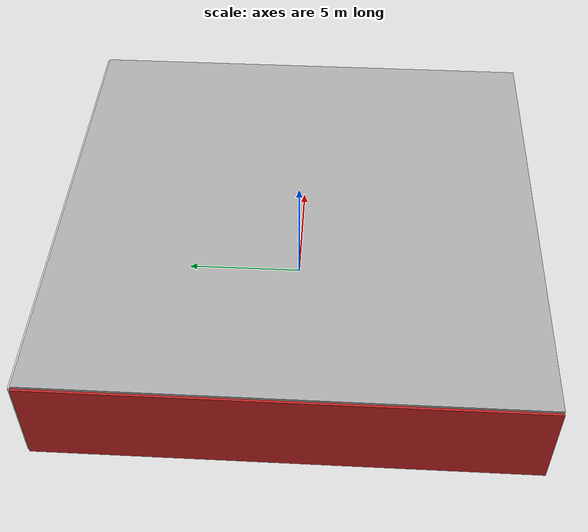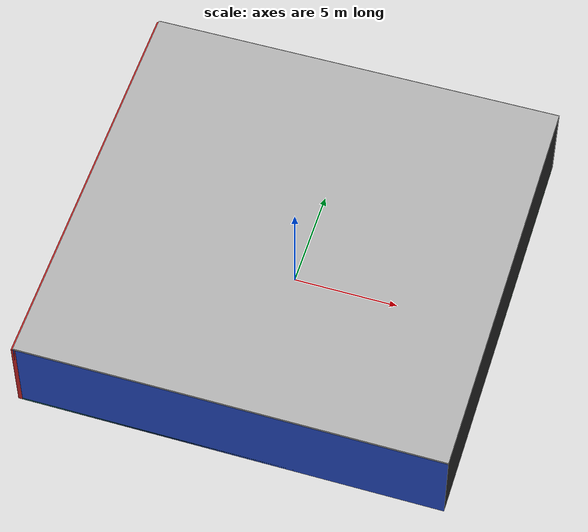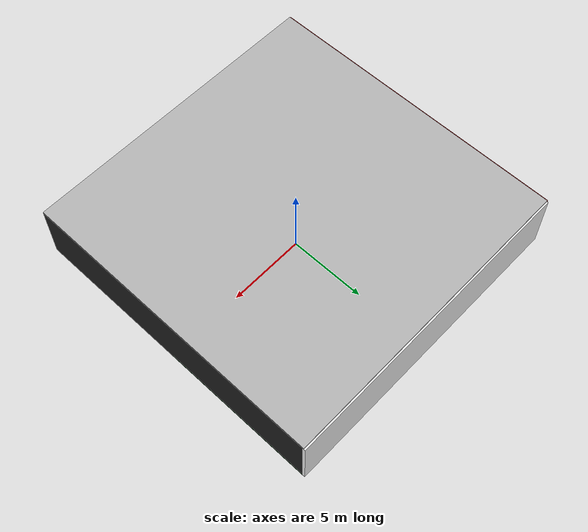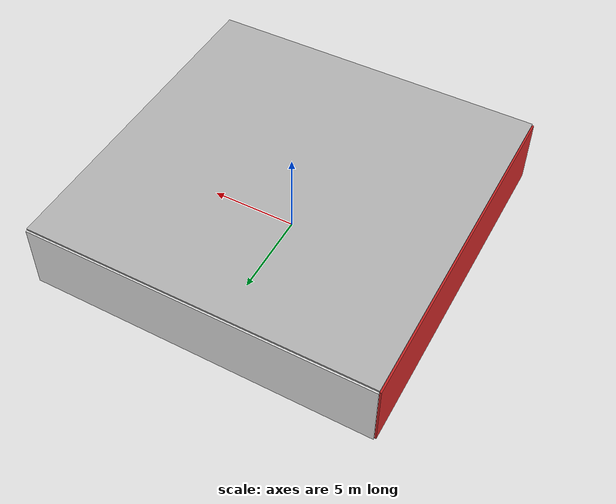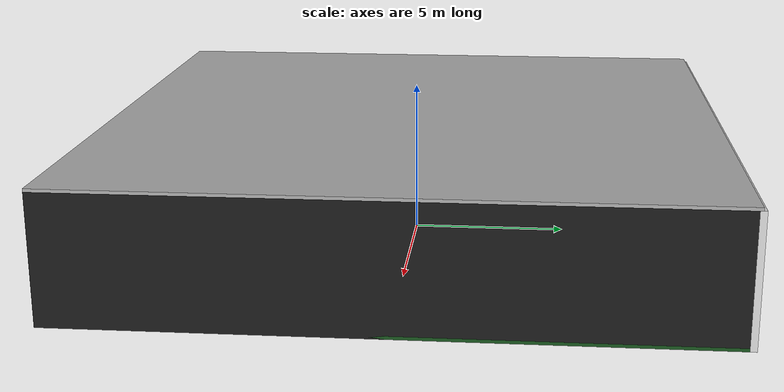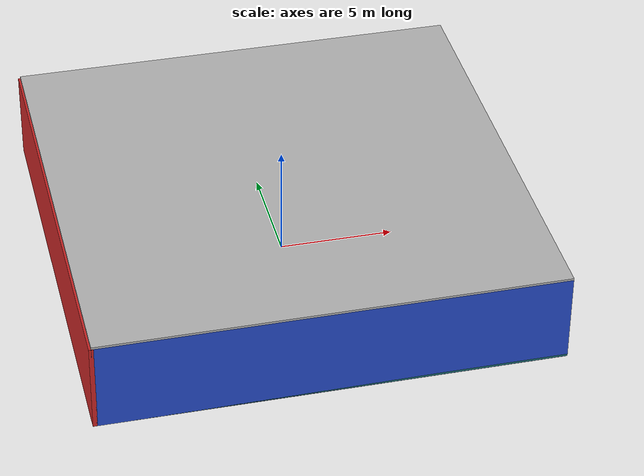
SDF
<sdf version="1.4">
 <world name="default">
  <physics type="ode">
   <max_step_size>0.001</max_step_size>
   <real_time_factor>1</real_time_factor>
   <real_time_update_rate>1000</real_time_update_rate>
   <gravity>0 0 -9.8</gravity>
  </physics>
  <scene><ambient>0.4 0.4 0.4 1</ambient><background>0.7 0.7 0.7 1</background><shadows>1</shadows></scene>
  <model name="Surrounding">
   <static>1</static>
   <link name="Ceiling">
    <collision name="Ceiling_Collision"><geometry><box><size>20 20 0.1</size></box></geometry></collision>
    <visual name="Ceiling_Visual">
     <geometry><box><size>20 20 0.1</size></box></geometry>
     <material>
      <script><uri>file://media/materials/scripts/gazebo.material</uri><name>Gazebo/PioneerBody</name></script>
     </material>
    </visual>
    <pose>0 0 4.05 0 0 0</pose>
   </link>
   <link name="Wall_South">
    <collision name="Wall_South_Collision">
     <geometry><box><size>20 0 4</size></box></geometry>
     <pose>0 0 2 0 -0 0</pose>
    </collision>
    <visual name="Wall_South_Visual">
     <pose>0 0 2 0 -0 0</pose>
     <geometry><box><size>20 0 4</size></box></geometry>
     <material>
      <script><uri>file://media/materials/scripts/gazebo.material</uri><name>Gazebo/BlueGlow</name></script>
     </material>
    </visual>
    <velocity_decay><linear>0</linear><angular>0</angular></velocity_decay>
    <pose>0 -10 0 0 -0 0</pose>
   </link>
   <link name="Wall_East">
    <collision name="Wall_21_Collision">
     <geometry><box><size>20 0 4</size></box></geometry>
     <pose>0 0 2 0 -0 0</pose>
    </collision>
    <visual name="Wall_21_Visual">
     <pose>0 0 2 0 -0 0</pose>
     <geometry><box><size>20 0 4</size></box></geometry>
     <material>
      <script><uri>file://media/materials/scripts/gazebo.material</uri><name>Gazebo/Black</name></script>
     </material>
    </visual>
    <velocity_decay><linear>0</linear><angular>0</angular></velocity_decay>
    <pose>10 0 0 0 -0 1.5708</pose>
   </link>
   <link name="Wall_North">
    <collision name="Wall_22_Collision">
     <geometry><box><size>20 0.2 4</size></box></geometry>
     <pose>0 0 2 0 -0 0</pose>
    </collision>
    <visual name="Wall_22_Visual">
     <pose>0 0 2 0 -0 0</pose>
     <geometry><box><size>20 0.2 4</size></box></geometry>
     <material>
      <script><uri>file://media/materials/scripts/gazebo.material</uri><name>Gazebo/WhiteGlow</name></script>
     </material>
    </visual>
    <velocity_decay><linear>0</linear><angular>0</angular></velocity_decay>
    <pose>0 10 0 0 -0 0</pose>
   </link>
   <link name="Wall_West">
    <collision name="Wall_23_Collision">
     <geometry><box><size>20 0.2 4</size></box></geometry>
     <pose>0 0 2 0 -0 0</pose>
    </collision>
    <visual name="Wall_23_Visual">
     <pose>0 0 2 0 -0 0</pose>
     <geometry><box><size>20 0.2 4</size></box></geometry>
     <material>
      <script><uri>file://media/materials/scripts/gazebo.material</uri><name>Gazebo/RedGlow</name></script>
     </material>
    </visual>
    <velocity_decay><linear>0</linear><angular>0</angular></velocity_decay>
    <pose>-10 0 0 0 0 -1.5708</pose>
   </link>
   <link name="Ground_link">
    <collision name="collision">
     <pose>0 0 .05 0 -0 0</pose>
     <geometry><box><size>20 20 0.1</size></box></geometry>
    </collision>
    <visual name="visual">
     <pose>0 0 .05 0 -0 0</pose>
     <geometry><box><size>20 20 0.1</size></box></geometry>
     <material>
      <script><uri>file://media/materials/scripts/gazebo.material</uri><name>Gazebo/GreenTransparent</name></script>
     </material>
    </visual>
   </link>
   <static>1</static>
  </model>
  <spherical_coordinates>
   <surface_model>EARTH_WGS84</surface_model>
   <latitude_deg>0</latitude_deg>
   <longitude_deg>0</longitude_deg>
   <elevation>0</elevation>
   <heading_deg>0</heading_deg>
  </spherical_coordinates>
  <light name="lightball_0" type="diffuse">
   <diffuse>0.8 0.8 0.8 1</diffuse>
   <specular>0.2 0.2 0.2 1</specular>
   <attenuation>
    <range>100</range>
    <constant>0.7</constant>
    <linear>0.01</linear>
    <quadratic>0.001</quadratic>
   </attenuation>
   <direction>-0.5 0.1 -0.9</direction>
   <pose>-4.68584872339 -4.50088857678 1.73264135369 0 0 0</pose>
  </light>
  <light name="lightball_1" type="diffuse">
   <diffuse>0.8 0.8 0.8 1</diffuse>
   <specular>0.2 0.2 0.2 1</specular>
   <attenuation>
    <range>100</range>
    <constant>0.7</constant>
    <linear>0.01</linear>
    <quadratic>0.001</quadratic>
   </attenuation>
   <direction>-0.5 0.1 -0.9</direction>
   <pose>3.69026820189 9.64765241765 2.22722132269 0 0 0</pose>
  </light>
  <light name="lightball_2" type="diffuse">
   <diffuse>0.8 0.8 0.8 1</diffuse>
   <specular>0.2 0.2 0.2 1</specular>
   <attenuation>
    <range>100</range>
    <constant>0.7</constant>
    <linear>0.01</linear>
    <quadratic>0.001</quadratic>
   </attenuation>
   <direction>-0.5 0.1 -0.9</direction>
   <pose>-5.43085351725 -9.34544000069 2.45455011479 0 0 0</pose>
  </light>
  <light name="lightball_3" type="diffuse">
   <diffuse>0.8 0.8 0.8 1</diffuse>
   <specular>0.2 0.2 0.2 1</specular>
   <attenuation>
    <range>100</range>
    <constant>0.7</constant>
    <linear>0.01</linear>
    <quadratic>0.001</quadratic>
   </attenuation>
   <direction>-0.5 0.1 -0.9</direction>
   <pose>-3.41916346679 7.30406194041 3.78796573821 0 0 0</pose>
  </light>
  <light name="lightball_4" type="diffuse">
   <diffuse>0.8 0.8 0.8 1</diffuse>
   <specular>0.2 0.2 0.2 1</specular>
   <attenuation>
    <range>100</range>
    <constant>0.7</constant>
    <linear>0.01</linear>
    <quadratic>0.001</quadratic>
   </attenuation>
   <direction>-0.5 0.1 -0.9</direction>
   <pose>0.513835887442 1.8040107515 2.92812512013 0 0 0</pose>
  </light>
  <light name="lightball_5" type="diffuse">
   <diffuse>0.8 0.8 0.8 1</diffuse>
   <specular>0.2 0.2 0.2 1</specular>
   <attenuation>
    <range>100</range>
    <constant>0.7</constant>
    <linear>0.01</linear>
    <quadratic>0.001</quadratic>
   </attenuation>
   <direction>-0.5 0.1 -0.9</direction>
   <pose>-4.41919769868 -4.14613322283 1.36747070387 0 0 0</pose>
  </light>
  <light name="lightball_6" type="diffuse">
   <diffuse>0.8 0.8 0.8 1</diffuse>
   <specular>0.2 0.2 0.2 1</specular>
   <attenuation>
    <range>100</range>
    <constant>0.7</constant>
    <linear>0.01</linear>
    <quadratic>0.001</quadratic>
   </attenuation>
   <direction>-0.5 0.1 -0.9</direction>
   <pose>-2.38477514633 -4.68219089171 2.79840548368 0 0 0</pose>
  </light>
  <include>
   <uri>model://construction_cone</uri>
   <pose>-7.54521548568 -1.81931916674 0 0 0 0.256186638182</pose>
  </include>
  <include><uri>model://cabinet</uri><pose>-7.58000480543 4.36924627289 0 0 0 3.10063523389</pose></include>
  <include>
   <uri>model://robocup_3Dsim_goal</uri>
   <pose>-6.32962998926 6.37931626187 0 0 0 1.53674955241</pose>
  </include>
  <include><uri>model://cabinet</uri><pose>-4.10254704915 -1.09342581973 0 0 0 0.812444788417</pose></include>
  <include><uri>model://table</uri><pose>-2.21391017904 1.40185053704 0 0 0 2.94234071046</pose></include>
  <include>
   <uri>model://robocup_3Dsim_goal</uri>
   <pose>1.80678653717 -8.2368804496 0 0 0 2.79115162107</pose>
  </include>
  <include>
   <uri>model://construction_cone</uri>
   <pose>1.39389364611 -0.680147814251 0 0 0 1.5791520357</pose>
  </include>
  <include>
   <uri>model://textured_shapes</uri>
   <pose>5.02376473578 6.74852612385 0 0 0 2.96970535172</pose>
  </include>
 </world>
</sdf>

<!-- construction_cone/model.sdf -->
<sdf version="1.5">
  <model name="Construction Cone">
    <link name="link">
      <collision name="collision">
        <geometry>
          <mesh>
            <scale>10 10 10</scale>
            <uri>file://isr-testbed/construction_cone/meshes/construction_cone.dae</uri>
          </mesh>
        </geometry>
      </collision>
      <visual name="visual">
        <geometry>
          <mesh>
            <scale>10 10 10</scale>
            <uri>file://isr-testbed/construction_cone/meshes/construction_cone.dae</uri>
          </mesh>
        </geometry>
      </visual>
    </link>
  </model>
</sdf>

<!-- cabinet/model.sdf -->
<sdf version="1.5">
  <model name="cabinet">
    <static>true</static>
    <link name="cabinet_bottom_plate">
      <inertial>
        <pose>0 0 -1 0 0 0</pose>
        <inertia>
          <ixx>2.050000</ixx>
          <ixy>0</ixy>
          <ixz>0</ixz>
          <iyy>2.050000</iyy>
          <iyz>0</iyz>
          <izz>2.050000</izz>
        </inertia>
        <mass>25.000000</mass>
      </inertial>
      <collision name="cabinet_bottom_plate_geom">
        <pose>0 0 0.010000 0 0 0</pose>
        <geometry>
          <box>
            <size>0.450000 0.450000 0.020000</size>
          </box>
        </geometry>
      </collision>
      <visual name="cabinet_bottom_plate_geom_visual">
        <pose>0 0 0.010000 0 0 0</pose>
        <geometry>
          <box>
            <size>0.450000 0.450000 0.020000</size>
          </box>
        </geometry>
        <material>
          <script>
            <uri>model://media/materials/scripts/gazebo.material</uri>
            <name>Gazebo/Wood</name>
          </script>
        </material>
      </visual>
      <collision name="cabinet_bottom_plate_geom_cabinet_back_plate">
        <pose>0.235000 0 0.510000 0 0 0</pose>
        <geometry>
          <box>
            <size>0.020000 0.450000 1.020000</size>
          </box>
        </geometry>
      </collision>
      <visual name="cabinet_bottom_plate_geom_cabinet_back_plate_visual">
        <pose>0.235000 0 0.510000 0 0 0</pose>
        <geometry>
          <box>
            <size>0.020000 0.450000 1.020000</size>
          </box>
        </geometry>
        <material>
          <script>
            <uri>model://media/materials/scripts/gazebo.material</uri>
            <name>Gazebo/Wood</name>
          </script>
        </material>
      </visual>
      <collision name="cabinet_bottom_plate_geom_cabinet_left_plate">
        <pose>0 0.235000 0.510000 0 0 0</pose>
        <geometry>
          <box>
            <size>0.450000 0.020000 1.020000</size>
          </box>
        </geometry>
      </collision>
      <visual name="cabinet_bottom_plate_geom_cabinet_left_plate_visual">
        <pose>0 0.235000 0.510000 0 0 0</pose>
        <geometry>
          <box>
            <size>0.450000 0.020000 1.020000</size>
          </box>
        </geometry>
        <material>
          <script>
            <uri>model://media/materials/scripts/gazebo.material</uri>
            <name>Gazebo/Wood</name>
          </script>
        </material>
      </visual>
      <collision name="cabinet_bottom_plate_geom_cabinet_middle_plate">
        <pose>0 0 0.510000 0 0 0</pose>
        <geometry>
          <box>
            <size>0.450000 0.450000 0.020000</size>
          </box>
        </geometry>
      </collision>
      <visual name="cabinet_bottom_plate_geom_cabinet_middle_plate_visual">
        <pose>0 0 0.510000 0 0 0</pose>
        <geometry>
          <box>
            <size>0.450000 0.450000 0.020000</size>
          </box>
        </geometry>
        <material>
          <script>
            <uri>model://media/materials/scripts/gazebo.material</uri>
            <name>Gazebo/Wood</name>
          </script>
        </material>
      </visual>
      <collision name="cabinet_bottom_plate_geom_cabinet_right_plate">
        <pose>0 -0.235000 0.510000 0 0 0</pose>
        <geometry>
          <box>
            <size>0.450000 0.020000 1.020000</size>
          </box>
        </geometry>
      </collision>
      <visual name="cabinet_bottom_plate_geom_cabinet_right_plate_visual">
        <pose>0 -0.235000 0.510000 0 0 0</pose>
        <geometry>
          <box>
            <size>0.450000 0.020000 1.020000</size>
          </box>
        </geometry>
        <material>
          <script>
            <uri>model://media/materials/scripts/gazebo.material</uri>
            <name>Gazebo/Wood</name>
          </script>
        </material>
      </visual>
      <collision name="cabinet_bottom_plate_geom_cabinet_top_plate">
        <pose>0 0 1.010000 0 0 0</pose>
        <geometry>
          <box>
            <size>0.450000 0.450000 0.020000</size>
          </box>
        </geometry>
      </collision>
      <visual name="cabinet_bottom_plate_geom_cabinet_top_plate_visual">
        <pose>0 0 1.010000 0 0 0</pose>
        <geometry>
          <box>
            <size>0.450000 0.450000 0.020000</size>
          </box>
        </geometry>
        <material>
          <script>
            <uri>model://media/materials/scripts/gazebo.material</uri>
            <name>Gazebo/Wood</name>
          </script>
        </material>
      </visual>
    </link>
  </model>
</sdf>

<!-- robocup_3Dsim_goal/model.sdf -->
<sdf version="1.5">
  <model name="robocup_3d_goal">
    <static>true</static>
    <link name="left_post">
      <pose>0 1.05 0.45 0 0 0</pose>
      <collision name="collision">
        <geometry>
          <cylinder>
            <radius>0.05</radius>
            <length>0.9</length>
          </cylinder>
        </geometry>
      </collision>
      <visual name="visual">
        <geometry>
          <cylinder>
            <radius>0.05</radius>
            <length>0.9</length>
          </cylinder>
        </geometry>
        <material>
          <script>
            <uri>file://media/materials/scripts/gazebo.material</uri>
            <name>Gazebo/ZincYellow</name>
          </script>
        </material>
      </visual>
    </link>
    <link name="left_support_horiz_lower">
      <pose>0.30 1.05 0.01 0 0 0</pose>
      <collision name="collision">
        <geometry>
          <box>
            <size>0.50 0.02 0.02</size>
          </box>
        </geometry>
      </collision>
      <visual name="visual">
        <geometry>
          <box>
            <size>0.50 0.02 0.02</size>
          </box>
        </geometry>
        <material>
          <script>
            <uri>file://media/materials/scripts/gazebo.material</uri>
            <name>Gazebo/White</name>
          </script>
        </material>
      </visual>
    </link>
    <link name="left_support_horiz_upper">
      <pose>0.30 1.05 0.79 0 0 0</pose>
      <collision name="collision">
        <geometry>
          <box>
            <size>0.50 0.02 0.02</size>
          </box>
        </geometry>
      </collision>
      <visual name="visual">
        <geometry>
          <box>
            <size>0.50 0.02 0.02</size>
          </box>
        </geometry>
        <material>
          <script>
            <uri>file://media/materials/scripts/gazebo.material</uri>
            <name>Gazebo/White</name>
          </script>
        </material>
      </visual>
    </link>
    <link name="left_support_vertical">
      <pose>0.56 1.05 0.4 0 1.5708 0</pose>
      <collision name="collision">
        <geometry>
          <box>
            <size>0.80 0.02 0.02</size>
          </box>
        </geometry>
      </collision>
      <visual name="visual">
        <geometry>
          <box>
            <size>0.80 0.02 0.02</size>
          </box>
        </geometry>
        <material>
          <script>
            <uri>file://media/materials/scripts/gazebo.material</uri>
            <name>Gazebo/White</name>
          </script>
        </material>
      </visual>
    </link>
    <link name="right_support_horiz_lower">
      <pose>0.30 -1.05 0.01 0 0 0</pose>
      <collision name="collision">
        <geometry>
          <box>
            <size>0.50 0.02 0.02</size>
          </box>
        </geometry>
      </collision>
      <visual name="visual">
        <geometry>
          <box>
            <size>0.50 0.02 0.02</size>
          </box>
        </geometry>
        <material>
          <script>
            <uri>file://media/materials/scripts/gazebo.material</uri>
            <name>Gazebo/White</name>
          </script>
        </material>
      </visual>
    </link>
    <link name="right_support_horiz_upper">
      <pose>0.30 -1.05 0.79 0 0 0</pose>
      <collision name="collision">
        <geometry>
          <box>
            <size>0.50 0.02 0.02</size>
          </box>
        </geometry>
      </collision>
      <visual name="visual">
        <geometry>
          <box>
            <size>0.50 0.02 0.02</size>
          </box>
        </geometry>
        <material>
          <script>
            <uri>file://media/materials/scripts/gazebo.material</uri>
            <name>Gazebo/White</name>
          </script>
        </material>
      </visual>
    </link>
    <link name="right_support_vertical">
      <pose>0.56 -1.05 0.4 0 1.5708 0</pose>
      <collision name="collision">
        <geometry>
          <box>
            <size>0.80 0.02 0.02</size>
          </box>
        </geometry>
      </collision>
      <visual name="visual">
        <geometry>
          <box>
            <size>0.80 0.02 0.02</size>
          </box>
        </geometry>
        <material>
          <script>
            <uri>file://media/materials/scripts/gazebo.material</uri>
            <name>Gazebo/White</name>
          </script>
        </material>
      </visual>
    </link>
    <link name="center_support_horiz_lower">
      <pose>0.56 0 0.01 0 1.5708 0</pose>
      <collision name="collision">
        <geometry>
          <box>
            <size>0.02 2.08 0.02</size>
          </box>
        </geometry>
      </collision>
      <visual name="visual">
        <geometry>
          <box>
            <size>0.02 2.08 0.02</size>
          </box>
        </geometry>
        <material>
          <script>
            <uri>file://media/materials/scripts/gazebo.material</uri>
            <name>Gazebo/White</name>
          </script>
        </material>
      </visual>
    </link>
    <link name="center_support_horiz_upper">
      <pose>0.56 0 0.79 0 1.5708 0</pose>
      <collision name="collision">
        <geometry>
          <box>
            <size>0.02 2.08 0.02</size>
          </box>
        </geometry>
      </collision>
      <visual name="visual">
        <geometry>
          <box>
            <size>0.02 2.08 0.02</size>
          </box>
        </geometry>
        <material>
          <script>
            <uri>file://media/materials/scripts/gazebo.material</uri>
            <name>Gazebo/White</name>
          </script>
        </material>
      </visual>
    </link>
    <link name="right_post">
      <pose>0 -1.05 0.45 0 0 0</pose>
      <collision name="collision">
        <geometry>
          <cylinder>
            <radius>0.05</radius>
            <length>0.9</length>
          </cylinder>
        </geometry>
      </collision>
      <visual name="visual">
        <geometry>
          <cylinder>
            <radius>0.05</radius>
            <length>0.9</length>
          </cylinder>
        </geometry>
        <material>
          <script>
            <uri>file://media/materials/scripts/gazebo.material</uri>
            <name>Gazebo/ZincYellow</name>
          </script>
        </material>
      </visual>
    </link>
    <link name="crossbar">
      <pose>0 0 0.85 1.57 1.57 0</pose>
      <collision name="collision">
        <geometry>
          <cylinder>
            <radius>0.05</radius>
            <length>2.0</length>
          </cylinder>
        </geometry>
      </collision>
      <visual name="visual">
        <geometry>
          <cylinder>
            <radius>0.05</radius>
            <length>2.0</length>
          </cylinder>
        </geometry>
        <material>
          <script>
            <uri>file://media/materials/scripts/gazebo.material</uri>
            <name>Gazebo/ZincYellow</name>
          </script>
        </material>
      </visual>
    </link>
    <link name="center_net">
      <pose>0.56 0 0.40 0 0 0</pose>
      <collision name="collision">
        <geometry>
          <box>
            <size>0.01 2.1 0.80</size>
          </box>
        </geometry>
      </collision>
      <visual name="visual">
        <geometry>
          <box>
            <size>0.01 2.1 0.80</size>
          </box>
        </geometry>
        <material>
          <script>
            <uri>model://../model_source/models/robocup09_spl_field/materials/scripts/</uri>
            <uri>model://../model_source/models/robocup09_spl_field/materials/textures/</uri>
            <name>RoboCup/Net</name>
          </script>
        </material>
      </visual>
    </link>
    <link name="left_net">
      <pose>0.30 1.05 0.40 0 0 0</pose>
      <collision name="collision">
        <geometry>
          <box>
            <size>0.50 0.01 0.76</size>
          </box>
        </geometry>
      </collision>
      <visual name="visual">
        <geometry>
          <box>
            <size>0.50 0.01 0.76</size>
          </box>
        </geometry>
        <material>
          <script>
            <uri>model://../model_source/models/robocup09_spl_field/materials/scripts/</uri>
            <uri>model://../model_source/models/robocup09_spl_field/materials/textures/</uri>
            <name>RoboCup/Net</name>
          </script>
        </material>
      </visual>
    </link>
    <link name="right_net">
      <pose>0.30 -1.05 0.40 0 0 0</pose>
      <collision name="collision">
        <geometry>
          <box>
            <size>0.50 0.01 0.76</size>
          </box>
        </geometry>
      </collision>
      <visual name="visual">
        <geometry>
          <box>
            <size>0.50 0.01 0.76</size>
          </box>
        </geometry>
        <material>
          <script>
            <uri>model://../model_source/models/robocup09_spl_field/materials/scripts/</uri>
            <uri>model://../model_source/models/robocup09_spl_field/materials/textures/</uri>
            <name>RoboCup/Net</name>
          </script>
        </material>
      </visual>
    </link>
  </model>
</sdf>

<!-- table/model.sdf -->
<sdf version="1.5">
  <model name="table">
    <static>true</static>
    <link name="link">
      <collision name="surface">
        <pose>0 0 1.0 0 0 0</pose>
        <geometry>
          <box>
            <size>1.5 0.8 0.03</size>
          </box>
        </geometry>
        <surface>
          <friction>
            <ode>
              <mu>0.6</mu>
              <mu2>0.6</mu2>
            </ode>
          </friction>
        </surface>
      </collision>
      <visual name="visual1">
        <pose>0 0 1.0 0 0 0</pose>
        <geometry>
          <box>
            <size>1.5 0.8 0.03</size>
          </box>
        </geometry>
        <material>
          <script>
            <uri>model://media/materials/scripts/gazebo.material</uri>
            <name>Gazebo/Wood</name>
          </script>
        </material>
      </visual>
      <collision name="front_left_leg">
        <pose>0.68 0.38 0.5 0 0 0</pose>
        <geometry>
          <cylinder>
            <radius>0.02</radius>
            <length>1.0</length>
          </cylinder>
        </geometry>
      </collision>
      <visual name="front_left_leg">
        <pose>0.68 0.38 0.5 0 0 0</pose>
        <geometry>
          <cylinder>
            <radius>0.02</radius>
            <length>1.0</length>
          </cylinder>
        </geometry>
        <material>
          <script>
            <uri>model://media/materials/scripts/gazebo.material</uri>
            <name>Gazebo/Grey</name>
          </script>
        </material>
      </visual>
      <collision name="front_right_leg">
        <pose>0.68 -0.38 0.5 0 0 0</pose>
        <geometry>
          <cylinder>
            <radius>0.02</radius>
            <length>1.0</length>
          </cylinder>
        </geometry>
      </collision>
      <visual name="front_right_leg">
        <pose>0.68 -0.38 0.5 0 0 0</pose>
        <geometry>
          <cylinder>
            <radius>0.02</radius>
            <length>1.0</length>
          </cylinder>
        </geometry>
        <material>
          <script>
            <uri>model://media/materials/scripts/gazebo.material</uri>
            <name>Gazebo/Grey</name>
          </script>
        </material>
      </visual>
      <collision name="back_right_leg">
        <pose>-0.68 -0.38 0.5 0 0 0</pose>
        <geometry>
          <cylinder>
            <radius>0.02</radius>
            <length>1.0</length>
          </cylinder>
        </geometry>
      </collision>
      <visual name="back_right_leg">
        <pose>-0.68 -0.38 0.5 0 0 0</pose>
        <geometry>
          <cylinder>
            <radius>0.02</radius>
            <length>1.0</length>
          </cylinder>
        </geometry>
        <material>
          <script>
            <uri>model://media/materials/scripts/gazebo.material</uri>
            <name>Gazebo/Grey</name>
          </script>
        </material>
      </visual>
      <collision name="back_left_leg">
        <pose>-0.68 0.38 0.5 0 0 0</pose>
        <geometry>
          <cylinder>
            <radius>0.02</radius>
            <length>1.0</length>
          </cylinder>
        </geometry>
      </collision>
      <visual name="back_left_leg">
        <pose>-0.68 0.38 0.5 0 0 0</pose>
        <geometry>
          <cylinder>
            <radius>0.02</radius>
            <length>1.0</length>
          </cylinder>
        </geometry>
        <material>
          <script>
            <uri>model://media/materials/scripts/gazebo.material</uri>
            <name>Gazebo/Grey</name>
          </script>
        </material>
      </visual>
    </link>
  </model>
</sdf>

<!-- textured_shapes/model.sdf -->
<sdf version="1.6">
  <model name="textured_shapes">
    <pose>0 0 0.5 0 0 0</pose>
    <link name="box">
      <pose>0 -1.5 0 0 0 0</pose>
      <collision name="collision">
        <geometry>
          <box>
            <size>1 1 1</size>
          </box>
        </geometry>
      </collision>
      <visual name="visual">
        <geometry>
          <box>
            <size>1 1 1</size>
          </box>
        </geometry>
        <material>
          <script>
            <uri>model://../model_source/models/textured_shapes/materials/scripts</uri>
            <uri>model://../model_source/models/textured_shapes/materials/textures</uri>
            <name>TexturedShape/Squares</name>
          </script>
        </material>
      </visual>
    </link>
    <link name="sphere">
      <collision name="collision">
        <geometry>
          <sphere>
            <radius>0.5</radius>
          </sphere>
        </geometry>
      </collision>
      <visual name="visual">
        <geometry>
          <sphere>
            <radius>0.5</radius>
          </sphere>
        </geometry>
        <material>
          <script>
            <uri>model://../model_source/models/textured_shapes/materials/scripts</uri>
            <uri>model://../model_source/models/textured_shapes/materials/textures</uri>
            <name>TexturedShape/Squares</name>
          </script>
        </material>
      </visual>
    </link>
    <link name="cylinder">
      <pose>0 1.5 0 0 0 0</pose>
      <collision name="collision">
        <geometry>
          <cylinder>
            <radius>0.5</radius>
            <length>1</length>
          </cylinder>
        </geometry>
      </collision>
      <visual name="visual">
        <geometry>
          <cylinder>
            <radius>0.5</radius>
            <length>1</length>
          </cylinder>
        </geometry>
        <material>
          <script>
            <uri>model://../model_source/models/textured_shapes/materials/scripts</uri>
            <uri>model://../model_source/models/textured_shapes/materials/textures</uri>
            <name>TexturedShape/Squares</name>
          </script>
        </material>
      </visual>
    </link>
  </model>
</sdf>
